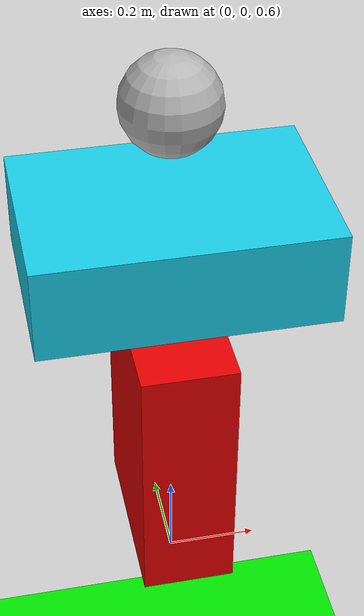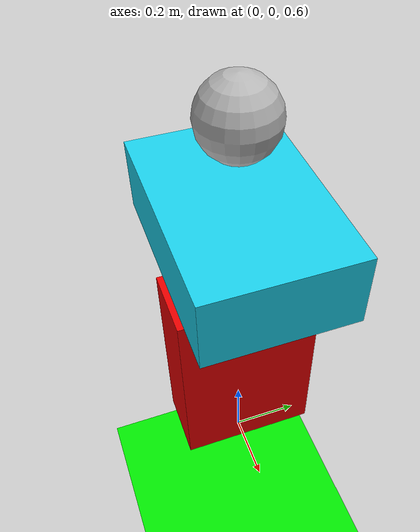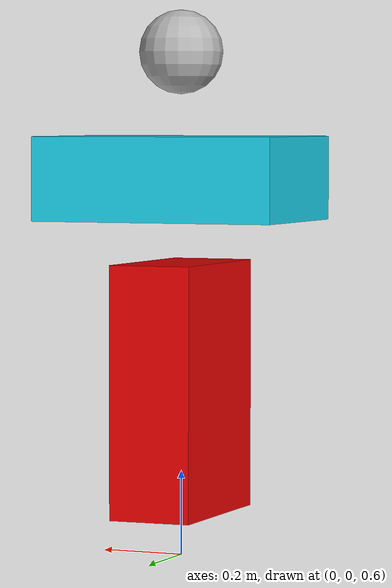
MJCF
<mujoco>
  <worldbody>
    <light diffuse=".5 .5 .5" pos="0 0 3" dir="0 0 -1"/>
    <geom type="plane" size="1 1 0.1" rgba="0 0.9 0 1"/>
    <body pos="0 0 1">
      <joint type="free"/>
      <geom type="box" size=".1 .2 .3" rgba="0.9 0 0 1"/>
    </body>
    <body pos="0 0 1.5" euler="0 90 0">
      <joint type="free"/>
      <geom type="box" size=".1 .2 .3" rgba="0.1 0.8 0.9 1"/>
    </body>
    <body pos="0 0 1.8">
      <joint type="free"/>
      <geom type="sphere" size=".1" rgba="0.7 0.7 0.7 1"/>
    </body>
  </worldbody>
</mujoco>
